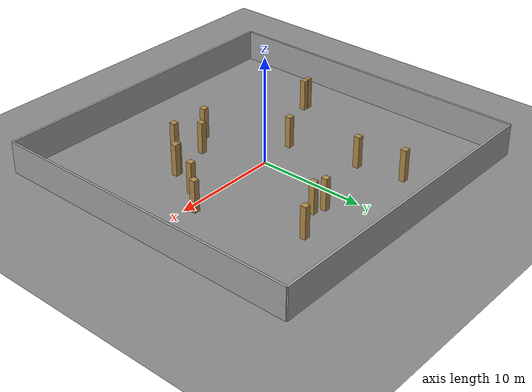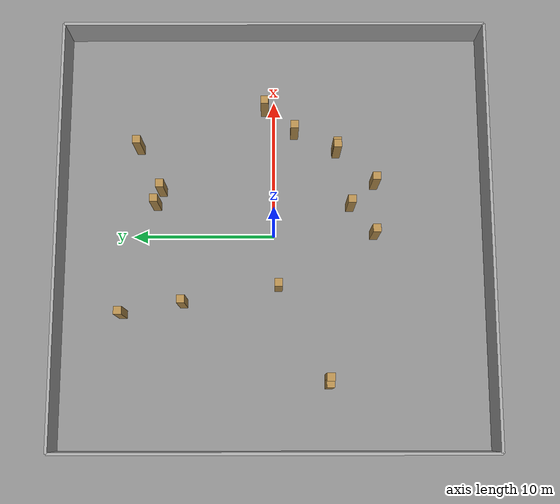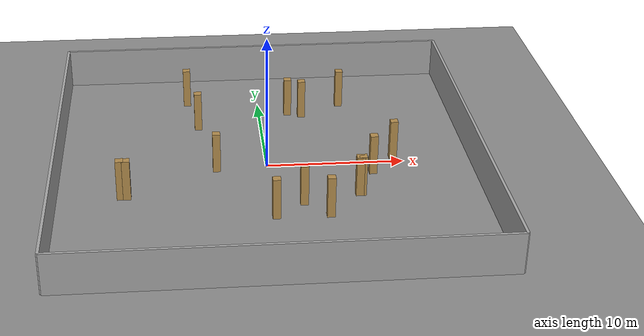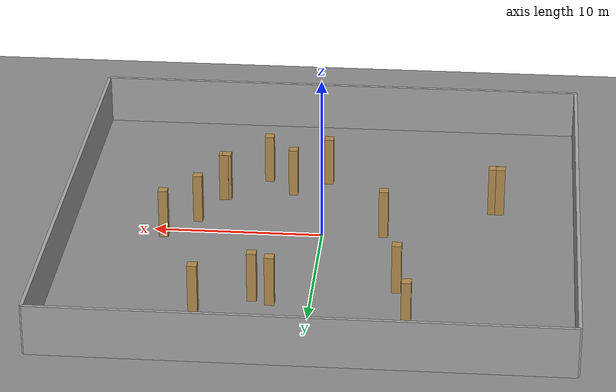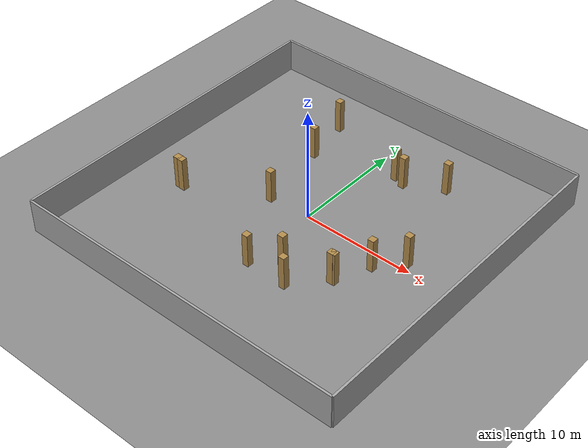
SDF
<?xml version="1.0"?>
<sdf version="1.6">
  <world name="hall_normal_high_2">
    <physics name="default_physics" type="ode">
      <real_time_update_rate>1000</real_time_update_rate>
      <max_step_size>0.001</max_step_size>
    </physics>
    <scene>
      <ambient>0.35750000000000004 0.35750000000000004 0.35750000000000004 1</ambient>
      <background>0.08 0.09 0.12 1</background>
      <shadows>true</shadows>
    </scene>
    <light name="sun" type="directional">
      <cast_shadows>true</cast_shadows>
      <pose>0 0 20 0 0 0</pose>
      <diffuse>0.65 0.65 0.65 1.0</diffuse>
      <specular>0.65 0.65 0.65 1.0</specular>
      <direction>-0.5 0.2 -1</direction>
    </light>
    <model name="ground_plane">
      <static>true</static>
      <link name="link">
        <collision name="collision"><geometry><plane><normal>0 0 1</normal><size>100 100</size></plane></geometry></collision>
        <visual name="visual">
          <geometry><plane><normal>0 0 1</normal><size>100 100</size></plane></geometry>
          <material><ambient>0.35 0.35 0.35 1</ambient><diffuse>0.55 0.55 0.55 1</diffuse></material>
        </visual>
      </link>
    </model>

    <model name="hall_north">
      <static>true</static>
      <pose>0.0000 15.0000 1.5000 0 0 0</pose>
      <link name="link">
        <collision name="collision"><geometry><box><size>30 0.2 3</size></box></geometry></collision>
        <visual name="visual">
          <geometry><box><size>30 0.2 3</size></box></geometry>
          <material><ambient>0.65 0.65 0.65 1</ambient><diffuse>0.65 0.65 0.65 1</diffuse></material>
        </visual>
      </link>
    </model>

    <model name="hall_south">
      <static>true</static>
      <pose>0.0000 -15.0000 1.5000 0 0 0</pose>
      <link name="link">
        <collision name="collision"><geometry><box><size>30 0.2 3</size></box></geometry></collision>
        <visual name="visual">
          <geometry><box><size>30 0.2 3</size></box></geometry>
          <material><ambient>0.65 0.65 0.65 1</ambient><diffuse>0.65 0.65 0.65 1</diffuse></material>
        </visual>
      </link>
    </model>

    <model name="hall_east">
      <static>true</static>
      <pose>15.0000 0.0000 1.5000 0 0 0</pose>
      <link name="link">
        <collision name="collision"><geometry><box><size>0.2 30 3</size></box></geometry></collision>
        <visual name="visual">
          <geometry><box><size>0.2 30 3</size></box></geometry>
          <material><ambient>0.65 0.65 0.65 1</ambient><diffuse>0.65 0.65 0.65 1</diffuse></material>
        </visual>
      </link>
    </model>

    <model name="hall_west">
      <static>true</static>
      <pose>-15.0000 0.0000 1.5000 0 0 0</pose>
      <link name="link">
        <collision name="collision"><geometry><box><size>0.2 30 3</size></box></geometry></collision>
        <visual name="visual">
          <geometry><box><size>0.2 30 3</size></box></geometry>
          <material><ambient>0.65 0.65 0.65 1</ambient><diffuse>0.65 0.65 0.65 1</diffuse></material>
        </visual>
      </link>
    </model>

    <model name="hall_column_0">
      <static>true</static>
      <pose>-3.6481 -0.3023 1.5000 0 0 0</pose>
      <link name="link">
        <collision name="collision"><geometry><box><size>0.55 0.55 3</size></box></geometry></collision>
        <visual name="visual">
          <geometry><box><size>0.55 0.55 3</size></box></geometry>
          <material><ambient>0.70 0.55 0.30 1</ambient><diffuse>0.70 0.55 0.30 1</diffuse></material>
        </visual>
      </link>
    </model>

    <model name="hall_column_1">
      <static>true</static>
      <pose>-4.7826 6.3401 1.5000 0 0 0</pose>
      <link name="link">
        <collision name="collision"><geometry><box><size>0.55 0.55 3</size></box></geometry></collision>
        <visual name="visual">
          <geometry><box><size>0.55 0.55 3</size></box></geometry>
          <material><ambient>0.70 0.55 0.30 1</ambient><diffuse>0.70 0.55 0.30 1</diffuse></material>
        </visual>
      </link>
    </model>

    <model name="hall_column_2">
      <static>true</static>
      <pose>0.1108 -7.0753 1.5000 0 0 0</pose>
      <link name="link">
        <collision name="collision"><geometry><box><size>0.55 0.55 3</size></box></geometry></collision>
        <visual name="visual">
          <geometry><box><size>0.55 0.55 3</size></box></geometry>
          <material><ambient>0.70 0.55 0.30 1</ambient><diffuse>0.70 0.55 0.30 1</diffuse></material>
        </visual>
      </link>
    </model>

    <model name="hall_column_3">
      <static>true</static>
      <pose>-5.5441 10.5861 1.5000 0 0 0</pose>
      <link name="link">
        <collision name="collision"><geometry><box><size>0.55 0.55 3</size></box></geometry></collision>
        <visual name="visual">
          <geometry><box><size>0.55 0.55 3</size></box></geometry>
          <material><ambient>0.70 0.55 0.30 1</ambient><diffuse>0.70 0.55 0.30 1</diffuse></material>
        </visual>
      </link>
    </model>

    <model name="hall_column_4">
      <static>true</static>
      <pose>6.4250 9.6214 1.5000 0 0 0</pose>
      <link name="link">
        <collision name="collision"><geometry><box><size>0.55 0.55 3</size></box></geometry></collision>
        <visual name="visual">
          <geometry><box><size>0.55 0.55 3</size></box></geometry>
          <material><ambient>0.70 0.55 0.30 1</ambient><diffuse>0.70 0.55 0.30 1</diffuse></material>
        </visual>
      </link>
    </model>

    <model name="hall_column_5">
      <static>true</static>
      <pose>-10.4431 -3.7702 1.5000 0 0 0</pose>
      <link name="link">
        <collision name="collision"><geometry><box><size>0.55 0.55 3</size></box></geometry></collision>
        <visual name="visual">
          <geometry><box><size>0.55 0.55 3</size></box></geometry>
          <material><ambient>0.70 0.55 0.30 1</ambient><diffuse>0.70 0.55 0.30 1</diffuse></material>
        </visual>
      </link>
    </model>

    <model name="hall_column_6">
      <static>true</static>
      <pose>7.5347 -1.4536 1.5000 0 0 0</pose>
      <link name="link">
        <collision name="collision"><geometry><box><size>0.55 0.55 3</size></box></geometry></collision>
        <visual name="visual">
          <geometry><box><size>0.55 0.55 3</size></box></geometry>
          <material><ambient>0.70 0.55 0.30 1</ambient><diffuse>0.70 0.55 0.30 1</diffuse></material>
        </visual>
      </link>
    </model>

    <model name="hall_column_7">
      <static>true</static>
      <pose>-10.0093 -3.7976 1.5000 0 0 0</pose>
      <link name="link">
        <collision name="collision"><geometry><box><size>0.55 0.55 3</size></box></geometry></collision>
        <visual name="visual">
          <geometry><box><size>0.55 0.55 3</size></box></geometry>
          <material><ambient>0.70 0.55 0.30 1</ambient><diffuse>0.70 0.55 0.30 1</diffuse></material>
        </visual>
      </link>
    </model>

    <model name="hall_column_8">
      <static>true</static>
      <pose>9.3173 0.6713 1.5000 0 0 0</pose>
      <link name="link">
        <collision name="collision"><geometry><box><size>0.55 0.55 3</size></box></geometry></collision>
        <visual name="visual">
          <geometry><box><size>0.55 0.55 3</size></box></geometry>
          <material><ambient>0.70 0.55 0.30 1</ambient><diffuse>0.70 0.55 0.30 1</diffuse></material>
        </visual>
      </link>
    </model>

    <model name="hall_column_9">
      <static>true</static>
      <pose>6.3153 -4.4404 1.5000 0 0 0</pose>
      <link name="link">
        <collision name="collision"><geometry><box><size>0.55 0.55 3</size></box></geometry></collision>
        <visual name="visual">
          <geometry><box><size>0.55 0.55 3</size></box></geometry>
          <material><ambient>0.70 0.55 0.30 1</ambient><diffuse>0.70 0.55 0.30 1</diffuse></material>
        </visual>
      </link>
    </model>

    <model name="hall_column_10">
      <static>true</static>
      <pose>3.2907 7.9498 1.5000 0 0 0</pose>
      <link name="link">
        <collision name="collision"><geometry><box><size>0.55 0.55 3</size></box></geometry></collision>
        <visual name="visual">
          <geometry><box><size>0.55 0.55 3</size></box></geometry>
          <material><ambient>0.70 0.55 0.30 1</ambient><diffuse>0.70 0.55 0.30 1</diffuse></material>
        </visual>
      </link>
    </model>

    <model name="hall_column_11">
      <static>true</static>
      <pose>2.1650 -5.4043 1.5000 0 0 0</pose>
      <link name="link">
        <collision name="collision"><geometry><box><size>0.55 0.55 3</size></box></geometry></collision>
        <visual name="visual">
          <geometry><box><size>0.55 0.55 3</size></box></geometry>
          <material><ambient>0.70 0.55 0.30 1</ambient><diffuse>0.70 0.55 0.30 1</diffuse></material>
        </visual>
      </link>
    </model>

    <model name="hall_column_12">
      <static>true</static>
      <pose>6.1384 -4.4573 1.5000 0 0 0</pose>
      <link name="link">
        <collision name="collision"><geometry><box><size>0.55 0.55 3</size></box></geometry></collision>
        <visual name="visual">
          <geometry><box><size>0.55 0.55 3</size></box></geometry>
          <material><ambient>0.70 0.55 0.30 1</ambient><diffuse>0.70 0.55 0.30 1</diffuse></material>
        </visual>
      </link>
    </model>

    <model name="hall_column_13">
      <static>true</static>
      <pose>2.2478 8.3464 1.5000 0 0 0</pose>
      <link name="link">
        <collision name="collision"><geometry><box><size>0.55 0.55 3</size></box></geometry></collision>
        <visual name="visual">
          <geometry><box><size>0.55 0.55 3</size></box></geometry>
          <material><ambient>0.70 0.55 0.30 1</ambient><diffuse>0.70 0.55 0.30 1</diffuse></material>
        </visual>
      </link>
    </model>

    <model name="hall_column_14">
      <static>true</static>
      <pose>3.7941 -7.1411 1.5000 0 0 0</pose>
      <link name="link">
        <collision name="collision"><geometry><box><size>0.55 0.55 3</size></box></geometry></collision>
        <visual name="visual">
          <geometry><box><size>0.55 0.55 3</size></box></geometry>
          <material><ambient>0.70 0.55 0.30 1</ambient><diffuse>0.70 0.55 0.30 1</diffuse></material>
        </visual>
      </link>
    </model>
  </world>
</sdf>
